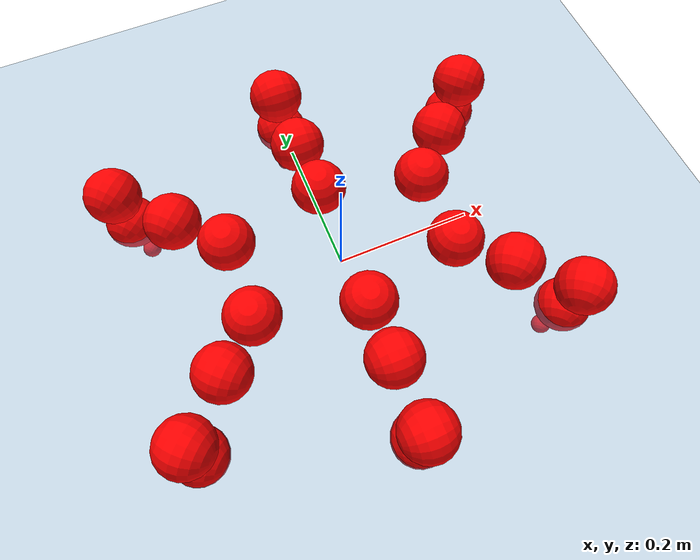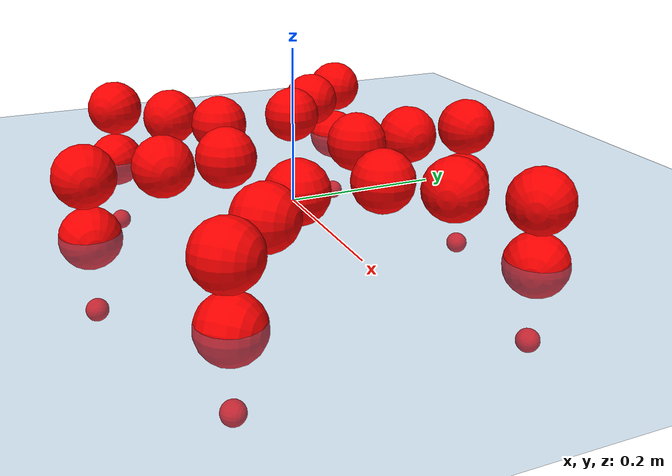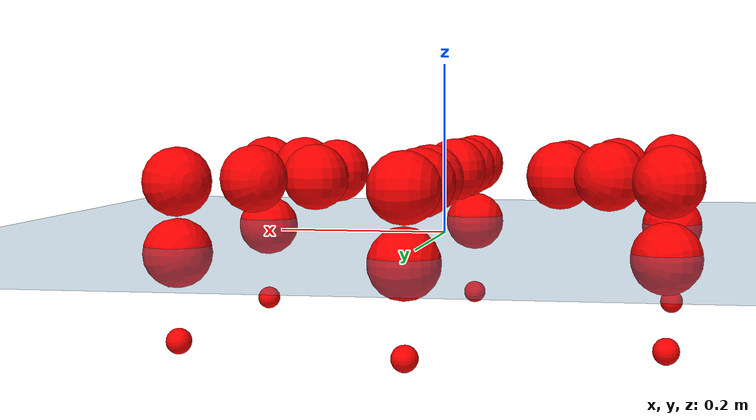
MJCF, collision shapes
<mujoco model="Golem">
  <compiler angle="radian" assetdir="assets" balanceinertia="true" inertiafromgeom="false"/>

  <option timestep="0.005" density="1.2" viscosity="2e-05"/>

  <size nkey="1"/>

  <visual>
    <quality shadowsize="8192"/>
    <map shadowclip="0.5"/>
  </visual>

  <default>
    <default class="/">
      <joint armature="0.01" damping="0.01" frictionloss="0.01"/>
      <geom contype="0" conaffinity="0" group="1" solref="-1000 -80"/>
      <site size="0.01 0.005 0.005" group="5"/>
      <general forcelimited="true" biastype="affine" gainprm="25" biasprm="0 -25 -0.5"/>
      <default class="visual">
        <geom type="mesh" group="2"/>
      </default>
      <default class="collision">
        <geom group="3"/>
      </default>
      <default class="foot">
        <geom size="0.01 0 0" condim="6" group="4" priority="1" solimp="0.015 1 0.01"/>
      </default>
      <default class="reward_collision_sphere">
        <geom group="5" rgba="1 0 0 1"/>
      </default>
    </default>
  </default>

  <asset>
    <texture type="skybox" colorspace="auto" name="//unnamed_texture_0" builtin="gradient" rgb1="0.95 0.95 0.95" rgb2="0.95 0.95 0.95" width="100" height="600"/>
    <texture type="2d" colorspace="auto" name="texplane" builtin="checker" rgb1="0.345 0.575 0.748" rgb2="0.345 0.575 0.748" markrgb="1 1 1" width="512" height="512"/>
    <material name="MatPlane" class="/" texture="texplane" texuniform="true" texrepeat="2 2" specular="0.9"/>
    <mesh name="body" class="/" file="body.stl" scale="0.001 0.001 0.001"/>
    <mesh name="coxa" class="/" file="coxa.stl" scale="0.001 0.001 0.001"/>
    <mesh name="femur" class="/" file="femur.stl" scale="0.001 0.001 0.001"/>
    <mesh name="tibia" class="/" file="tibia.stl" scale="0.001 0.001 0.001"/>
    <mesh name="tarsus" class="/" file="tarsus.stl" scale="0.001 0.001 0.001"/>
  </asset>

  <worldbody>
    <geom name="floor" class="/" size="100 100 0.125" type="plane" group="0" material="MatPlane"/>
    <light name="toplight_shadow" class="/" pos="0 0 5" dir="0.0990148 0.0990148 -0.990148" type="directional" ambient="0.04 0.04 0.04" diffuse="0.55 0.55 0.55" specular="0.12 0.12 0.12"/>
    <light name="toplight_fill" class="/" pos="0 0 5" dir="0.0990148 0.0990148 -0.990148" type="directional" castshadow="false" ambient="0.04 0.04 0.04" diffuse="0.3 0.3 0.3" specular="0.08 0.08 0.08"/>
    <body name="trunk" pos="-0.000122176 0.000810116 -0.00273745" quat="0.999999 -0.000382689 0.00077397 -0.00108935">
      <inertial pos="0.00202879 -0.00196279 -0.000816158" quat="0.999991 0.00181923 0.00343831 0.0017076" mass="3.149" diaginertia="0.00611532 0.00499955 0.0166632"/>
      <joint name="//unnamed_joint_0" type="free"/>
      <geom name="//unnamed_geom_1" class="/" pos="0 0 0.0708818" quat="1 0 0 0" type="mesh" rgba="0.9 0.9 0.9 1" mesh="body"/>
      <site name="imu" class="/" pos="0.117216 0.013637 0.11977" size="0.0096542"/>
      <camera name="track" class="/" pos="0 -1.75984 0" quat="0.707107 0.707107 0 0" mode="trackcom"/>
      <camera name="ego_camera" class="/" pos="0.118146 0 0.110753" quat="-0.5 -0.5 0.5 0.5"/>
      <body name="coxa_RR" pos="-0.16288 -0.0732407 0.0729918" quat="0.382448 0.000417657 0.000634738 -0.923977">
        <inertial pos="0.00280012 0.000812057 -0.0022128" quat="0.99996 0.00768529 0.00397104 -0.00213008" mass="0.18528" diaginertia="0.00614391 0.00542075 0.0168988"/>
        <joint name="coxa_joint_RR" class="/" pos="0 0 0" axis="0.000728679 -0.00035515 -1" stiffness="0.000399945" range="-3.10488 3.12533" armature="0.00914348" damping="0" frictionloss="0.0102787"/>
        <geom name="//unnamed_geom_2" class="/" type="mesh" rgba="0.2 0.2 0.2 1" mesh="coxa"/>
        <geom name="//unnamed_geom_3" class="reward_collision_sphere" size="0.0386168" pos="-0.0272644 0 0"/>
        <body name="femur_RR" pos="0.0513522 -0.00150736 0.00140829" quat="0.500474 -0.500285 0.500166 0.499074">
          <inertial pos="0.000224045 0.00192351 0.002365" quat="0.999909 -0.0081494 -0.00821091 0.00695583" mass="0.172249" diaginertia="0.00619391 0.00497776 0.0161703"/>
          <joint name="femur_joint_RR" class="/" pos="0 0 0" axis="-0.00208883 0.0048849 -0.999986" range="-3.12311 3.12189" armature="0.0109107" damping="0.00870543" frictionloss="0.00975812"/>
          <geom name="//unnamed_geom_4" class="/" type="mesh" rgba="0.9 0.9 0.9 1" mesh="femur"/>
          <geom name="//unnamed_geom_5" class="reward_collision_sphere" size="0.0386168"/>
          <body name="tibia_RR" pos="-0.00284169 -0.0933624 0.000588677" quat="-3.79894e-05 1 -3.26873e-05 -7.58999e-05">
            <inertial pos="-0.000656011 0.00235321 -0.000706444" quat="1 7.42706e-05 0.00067603 0.000188664" mass="0.173981" diaginertia="0.00602122 0.00507015 0.0162708"/>
            <joint name="tibia_joint_RR" class="/" pos="0 0 0" axis="0.0127696 0.00142675 0.999917" range="-3.09423 3.12977" armature="0.00834268" damping="0.00892251" frictionloss="0.010379"/>
            <geom name="//unnamed_geom_6" class="/" type="mesh" rgba="0.2 0.2 0.2 1" mesh="tibia"/>
            <geom name="//unnamed_geom_7" class="reward_collision_sphere" size="0.0386168"/>
            <body name="tarsus_RR" pos="0.0793228 0.00293625 -0.00194122" quat="0.999999 -0.000995979 0.000615119 -0.000335558">
              <inertial pos="0.0568689 0.00112308 0.00286589" quat="0.507093 0.502046 0.492173 0.49857" mass="0.174146" diaginertia="0.00594419 0.00508177 0.0164413"/>
              <joint name="tarsus_joint_RR" class="/" pos="0 0 0" axis="-0.00906383 0.0115136 0.999893" range="-3.18853 3.15851" armature="0.00925117" damping="0.0157238" frictionloss="0.00915733"/>
              <geom name="//unnamed_geom_8" class="/" type="mesh" rgba="0.9 0.9 0.9 1" mesh="tarsus"/>
              <geom name="foot_1" class="foot" size="0.00868569" pos="0.101787 0 0" quat="0 -0.707107 0 0.707107"/>
              <geom name="//unnamed_geom_10" class="reward_collision_sphere" size="0.0386168"/>
              <geom name="//unnamed_geom_11" class="reward_collision_sphere" size="0.0144813" pos="0.0976974 0 0"/>
              <site name="foot_1" class="foot" pos="0.101787 0 0" quat="0 -0.707107 0 0.707107" size="0.0096542"/>
            </body>
          </body>
        </body>
      </body>
      <body name="coxa_RM" pos="0.00150121 -0.11885 0.0735627" quat="0.707108 -0.000187997 0.000117514 -0.707105">
        <inertial pos="-0.000795119 -0.00028814 -0.00258656" quat="0.999958 0.00744777 -0.00354995 0.00390515" mass="0.178869" diaginertia="0.00627945 0.00554027 0.0176312"/>
        <joint name="coxa_joint_RM" class="/" pos="0 0 0" axis="0.00570846 0.00588877 -0.999966" range="-3.14307 3.09124" armature="0.00950892" damping="0.0112712" frictionloss="0.0109857"/>
        <geom name="//unnamed_geom_12" class="/" type="mesh" rgba="0.2 0.2 0.2 1" mesh="coxa"/>
        <geom name="//unnamed_geom_13" class="reward_collision_sphere" size="0.0386168" pos="-0.0272644 0 0"/>
        <body name="femur_RM" pos="0.0526535 -0.000799608 -0.00141059" quat="0.499931 -0.500337 0.499547 0.500185">
          <inertial pos="0.000220196 0.00272136 0.000604786" quat="0.999991 -0.00302917 -0.00277272 0.00060641" mass="0.185872" diaginertia="0.00600966 0.00529352 0.0162608"/>
          <joint name="femur_joint_RM" class="/" pos="0 0 0" axis="-0.000596656 -0.000196882 -1" range="-3.08467 3.18282" armature="0.0110612" damping="0.0187232" frictionloss="0.010879"/>
          <geom name="//unnamed_geom_14" class="/" type="mesh" rgba="0.9 0.9 0.9 1" mesh="femur"/>
          <geom name="//unnamed_geom_15" class="reward_collision_sphere" size="0.0386168"/>
          <body name="tibia_RM" pos="-0.0001375 -0.0947348 7.49637e-05" quat="0.000258657 1 -0.000437821 0.000448904">
            <inertial pos="-0.000895328 5.6122e-05 0.00285759" quat="0.999997 -0.00211032 0.000111862 -0.00151543" mass="0.185235" diaginertia="0.00621421 0.00524353 0.0162032"/>
            <joint name="tibia_joint_RM" class="/" pos="0 0 0" axis="-0.00803357 0.00612171 0.999949" range="-3.10747 3.19543" armature="0.00860064" damping="0.0193421" frictionloss="0.0107761"/>
            <geom name="//unnamed_geom_16" class="/" type="mesh" rgba="0.2 0.2 0.2 1" mesh="tibia"/>
            <geom name="//unnamed_geom_17" class="reward_collision_sphere" size="0.0386168"/>
            <body name="tarsus_RM" pos="0.0785297 -0.00133056 0.000173355" quat="0.999999 -0.000748152 0.000733804 -0.00096888">
              <inertial pos="0.0550034 -0.000993282 0.000644045" quat="0.499136 0.499915 0.500084 0.500864" mass="0.191813" diaginertia="0.00644063 0.00542218 0.0171624"/>
              <joint name="tarsus_joint_RM" class="/" pos="0 0 0" axis="-0.00589108 0.00385211 0.999975" range="-3.11412 3.14701" armature="0.00870803" damping="0.0165176" frictionloss="0.00957791"/>
              <geom name="//unnamed_geom_18" class="/" type="mesh" rgba="0.9 0.9 0.9 1" mesh="tarsus"/>
              <geom name="foot_2" class="foot" size="0.00867344" pos="0.101787 0 0" quat="0 -0.707107 0 0.707107"/>
              <geom name="//unnamed_geom_20" class="reward_collision_sphere" size="0.0386168"/>
              <geom name="//unnamed_geom_21" class="reward_collision_sphere" size="0.0144813" pos="0.0976974 0 0"/>
              <site name="foot_2" class="foot" pos="0.101787 0 0" quat="0 -0.707107 0 0.707107" size="0.0096542"/>
            </body>
          </body>
        </body>
      </body>
      <body name="coxa_RF" pos="0.163083 -0.0746445 0.0728752" quat="0.924071 0.000163706 -0.000477842 -0.382221">
        <inertial pos="-0.00216069 -0.00106446 -0.00264799" quat="0.99991 0.0045679 -0.00564314 0.0112808" mass="0.178558" diaginertia="0.00627026 0.00529477 0.0171425"/>
        <joint name="coxa_joint_RF" class="/" pos="0 0 0" axis="0.00263584 -0.000437334 -0.999996" range="-3.15924 3.08399" armature="0.00999542" damping="0.0171891" frictionloss="0.0108559"/>
        <geom name="//unnamed_geom_22" class="/" type="mesh" rgba="0.2 0.2 0.2 1" mesh="coxa"/>
        <geom name="//unnamed_geom_23" class="reward_collision_sphere" size="0.0386168" pos="-0.0272644 0 0"/>
        <body name="femur_RF" pos="0.0556114 -0.00189053 0.00110789" quat="0.50118 -0.500196 0.499247 0.499375">
          <inertial pos="-0.000798549 0.000123503 -1.52311e-05" quat="0.999927 -0.00920347 0.00435373 -0.00644777" mass="0.180071" diaginertia="0.00601173 0.00516497 0.0161061"/>
          <joint name="femur_joint_RF" class="/" pos="0 0 0" axis="-0.00237829 -0.00604414 -0.999979" range="-3.10063 3.13993" armature="0.00926047" damping="0.00952504" frictionloss="0.00914653"/>
          <geom name="//unnamed_geom_24" class="/" type="mesh" rgba="0.9 0.9 0.9 1" mesh="femur"/>
          <geom name="//unnamed_geom_25" class="reward_collision_sphere" size="0.0386168"/>
          <body name="tibia_RF" pos="0.00210232 -0.0929067 0.00176829" quat="0.000571338 1 0.000129518 -0.000386775">
            <inertial pos="0.000572529 -0.00230181 -0.00278261" quat="0.99992 0.00762752 -0.00862765 0.00532108" mass="0.180423" diaginertia="0.0059877 0.00519662 0.0167406"/>
            <joint name="tibia_joint_RF" class="/" pos="0 0 0" axis="-0.0108155 -0.00267358 0.999938" stiffness="0.0128245" range="-3.18306 3.12945" armature="0.0094134" damping="0.0216411" frictionloss="0.00839791"/>
            <geom name="//unnamed_geom_26" class="/" type="mesh" rgba="0.2 0.2 0.2 1" mesh="tibia"/>
            <geom name="//unnamed_geom_27" class="reward_collision_sphere" size="0.0386168"/>
            <body name="tarsus_RF" pos="0.0799647 -0.00220566 -0.00117539" quat="1 -2.68268e-05 -3.8656e-05 1.67296e-05">
              <inertial pos="0.0549182 -0.000587718 0.00108425" quat="0.498683 0.497259 0.499053 0.50497" mass="0.173793" diaginertia="0.00589095 0.00496463 0.0160535"/>
              <joint name="tarsus_joint_RF" class="/" pos="0 0 0" axis="0.00255628 0.0102579 0.999944" stiffness="0.00371397" range="-3.12162 3.14589" armature="0.00937128" damping="0" frictionloss="0.0108584"/>
              <geom name="//unnamed_geom_28" class="/" type="mesh" rgba="0.9 0.9 0.9 1" mesh="tarsus"/>
              <geom name="foot_3" class="foot" size="0.0101672" pos="0.101787 0 0" quat="0 -0.707107 0 0.707107"/>
              <geom name="//unnamed_geom_30" class="reward_collision_sphere" size="0.0386168"/>
              <geom name="//unnamed_geom_31" class="reward_collision_sphere" size="0.0144813" pos="0.0976974 0 0"/>
              <site name="foot_3" class="foot" pos="0.101787 0 0" quat="0 -0.707107 0 0.707107" size="0.0096542"/>
            </body>
          </body>
        </body>
      </body>
      <body name="coxa_LR" pos="-0.161258 0.0747546 0.0750296" quat="0.382817 0.000372726 -0.00136105 0.923823">
        <inertial pos="-0.00207086 0.00255298 -0.00238854" quat="0.999997 0.000212575 0.00149441 0.00177383" mass="0.180222" diaginertia="0.00609485 0.00505268 0.0164958"/>
        <joint name="coxa_joint_LR" class="/" pos="0 0 0" axis="-0.0108333 0.0129992 -0.999857" stiffness="0.0109728" range="-3.17806 3.18843" armature="0.0094172" damping="0.0162706" frictionloss="0.0110179"/>
        <geom name="//unnamed_geom_32" class="/" type="mesh" rgba="0.2 0.2 0.2 1" mesh="coxa"/>
        <geom name="//unnamed_geom_33" class="reward_collision_sphere" size="0.0386168" pos="-0.0272644 0 0"/>
        <body name="femur_LR" pos="0.0530586 0.00174077 0.0025009" quat="0.499804 -0.499589 0.500207 0.500399">
          <inertial pos="-0.00126351 0.00275424 0.000890233" quat="0.999941 -0.00739163 0.00541698 -0.00586235" mass="0.175611" diaginertia="0.00642352 0.00523209 0.0161037"/>
          <joint name="femur_joint_LR" class="/" pos="0 0 0" axis="0.00451086 -0.00566331 0.999974" range="-3.18224 3.16794" armature="0.0103666" damping="0.00628446" frictionloss="0.00972711"/>
          <geom name="//unnamed_geom_34" class="/" type="mesh" rgba="0.9 0.9 0.9 1" mesh="femur"/>
          <geom name="//unnamed_geom_35" class="reward_collision_sphere" size="0.0386168"/>
          <body name="tibia_LR" pos="0.00149819 -0.0956856 -0.00338077" quat="-0.000483352 1 -0.00025219 0.00019699">
            <inertial pos="-0.00232339 0.00111151 0.00292939" quat="0.999902 0.00802809 0.00909743 -0.00705323" mass="0.185199" diaginertia="0.00614578 0.00539263 0.0162823"/>
            <joint name="tibia_joint_LR" class="/" pos="0 0 0" axis="0.00275516 -0.00501012 -0.999984" range="-3.097 3.19551" armature="0.00820032" damping="0" frictionloss="0.00961045"/>
            <geom name="//unnamed_geom_36" class="/" type="mesh" rgba="0.2 0.2 0.2 1" mesh="tibia"/>
            <geom name="//unnamed_geom_37" class="reward_collision_sphere" size="0.0386168"/>
            <body name="tarsus_LR" pos="0.0801625 -0.00106659 0.00124747" quat="1 -2.09165e-05 5.8453e-05 -9.39997e-06">
              <inertial pos="0.0541872 -0.00246212 -0.000600289" quat="0.500016 0.500346 0.500131 0.499506" mass="0.172414" diaginertia="0.00612873 0.00531077 0.0169502"/>
              <joint name="tarsus_joint_LR" class="/" pos="0 0 0" axis="-0.0015199 0.000725365 -0.999999" stiffness="0.00401833" range="-3.13439 3.1925" armature="0.0096006" damping="0.00458352" frictionloss="0.00840193"/>
              <geom name="//unnamed_geom_38" class="/" type="mesh" rgba="0.9 0.9 0.9 1" mesh="tarsus"/>
              <geom name="foot_4" class="foot" size="0.0106443" pos="0.101787 0 0" quat="0.707107 0 -0.707107 0"/>
              <geom name="//unnamed_geom_40" class="reward_collision_sphere" size="0.0386168"/>
              <geom name="//unnamed_geom_41" class="reward_collision_sphere" size="0.0144813" pos="0.0976974 0 0"/>
              <site name="foot_4" class="foot" pos="0.101787 0 0" quat="0.707107 0 -0.707107 0" size="0.0096542"/>
            </body>
          </body>
        </body>
      </body>
      <body name="coxa_LM" pos="0.00285192 0.115281 0.0725745" quat="0.707086 1.0504e-05 -6.50092e-05 0.707128">
        <inertial pos="0.000470625 -0.000170617 -0.0020596" quat="0.999995 -0.0010862 0.00298116 0.000508339" mass="0.17729" diaginertia="0.00638484 0.00526522 0.0167267"/>
        <joint name="coxa_joint_LM" class="/" pos="0 0 0" axis="0.0125067 0.00328905 -0.999916" range="-3.12647 3.14713" armature="0.0101589" damping="0.00450463" frictionloss="0.00956526"/>
        <geom name="//unnamed_geom_42" class="/" type="mesh" rgba="0.2 0.2 0.2 1" mesh="coxa"/>
        <geom name="//unnamed_geom_43" class="reward_collision_sphere" size="0.0386168" pos="-0.0272644 0 0"/>
        <body name="femur_LM" pos="0.0507311 0.00244128 -0.000206559" quat="0.500542 -0.499426 0.499981 0.50005">
          <inertial pos="-0.00275227 6.31616e-05 -0.00173759" quat="0.9999 0.0105216 -0.00851872 0.00410898" mass="0.173862" diaginertia="0.00605243 0.00507684 0.0161992"/>
          <joint name="femur_joint_LM" class="/" pos="0 0 0" axis="0.000278843 -0.00984242 0.999952" stiffness="0.00447471" range="-3.13868 3.10183" armature="0.00849389" damping="0" frictionloss="0.00833911"/>
          <geom name="//unnamed_geom_44" class="/" type="mesh" rgba="0.9 0.9 0.9 1" mesh="femur"/>
          <geom name="//unnamed_geom_45" class="reward_collision_sphere" size="0.0386168"/>
          <body name="tibia_LM" pos="-0.000547571 -0.0925532 -0.000359173" quat="-0.000118424 0.999999 -0.00114821 -5.3815e-05">
            <inertial pos="0.00203355 0.000539207 -0.000152767" quat="0.999993 -0.00372871 -0.000503631 -0.000774287" mass="0.182069" diaginertia="0.00610095 0.00514885 0.0162892"/>
            <joint name="tibia_joint_LM" class="/" pos="0 0 0" axis="0.0128715 0.00671188 -0.999895" range="-3.0849 3.09247" armature="0.010212" damping="0.00275955" frictionloss="0.0109968"/>
            <geom name="//unnamed_geom_46" class="/" type="mesh" rgba="0.2 0.2 0.2 1" mesh="tibia"/>
            <geom name="//unnamed_geom_47" class="reward_collision_sphere" size="0.0386168"/>
            <body name="tarsus_LM" pos="0.0780248 -0.00157807 0.000233128" quat="1 -0.00018061 0.000176335 2.85558e-05">
              <inertial pos="0.0524182 -0.00227298 0.00056231" quat="0.504873 0.502058 0.490212 0.502726" mass="0.176159" diaginertia="0.00606401 0.00508712 0.0161033"/>
              <joint name="tarsus_joint_LM" class="/" pos="0 0 0" axis="-0.0131911 0.000446372 -0.999913" stiffness="0.0111158" range="-3.14219 3.14523" armature="0.00979867" damping="0.0183303" frictionloss="0.010576"/>
              <geom name="//unnamed_geom_48" class="/" type="mesh" rgba="0.9 0.9 0.9 1" mesh="tarsus"/>
              <geom name="foot_5" class="foot" size="0.0106943" pos="0.101787 0 0" quat="0.707107 0 -0.707107 0"/>
              <geom name="//unnamed_geom_50" class="reward_collision_sphere" size="0.0386168"/>
              <geom name="//unnamed_geom_51" class="reward_collision_sphere" size="0.0144813" pos="0.0976974 0 0"/>
              <site name="foot_5" class="foot" pos="0.101787 0 0" quat="0.707107 0 -0.707107 0" size="0.0096542"/>
            </body>
          </body>
        </body>
      </body>
      <body name="coxa_LF" pos="0.163994 0.071529 0.0709725" quat="0.923845 0.000313652 0.0002687 0.382766">
        <inertial pos="-0.00216213 -0.00151574 -0.00272545" quat="0.999996 0.0014872 0.000472735 -0.00243885" mass="0.173188" diaginertia="0.00599228 0.00498255 0.016648"/>
        <joint name="coxa_joint_LF" class="/" pos="0 0 0" axis="0.00840596 0.00163033 -0.999963" range="-3.18964 3.1418" armature="0.0102872" damping="0.012886" frictionloss="0.00828908"/>
        <geom name="//unnamed_geom_52" class="/" type="mesh" rgba="0.2 0.2 0.2 1" mesh="coxa"/>
        <geom name="//unnamed_geom_53" class="reward_collision_sphere" size="0.0386168" pos="-0.0272644 0 0"/>
        <body name="femur_LF" pos="0.0559112 0.00228338 0.00113314" quat="0.501027 -0.499589 0.499296 0.500086">
          <inertial pos="-0.000236023 -0.00275156 0.000529279" quat="1 -2.84734e-05 2.28852e-05 5.24639e-05" mass="0.175701" diaginertia="0.00583966 0.00511614 0.0161042"/>
          <joint name="femur_joint_LF" class="/" pos="0 0 0" axis="0.0120678 -0.00661094 0.999905" range="-3.18186 3.19543" armature="0.00941591" damping="0.00277415" frictionloss="0.00957627"/>
          <geom name="//unnamed_geom_54" class="/" type="mesh" rgba="0.9 0.9 0.9 1" mesh="femur"/>
          <geom name="//unnamed_geom_55" class="reward_collision_sphere" size="0.0386168"/>
          <body name="tibia_LF" pos="-0.000248268 -0.09522 0.000615442" quat="-0.000517056 0.999999 -0.000695985 0.000836526">
            <inertial pos="0.00253653 0.00261816 -0.0022914" quat="0.99999 -0.00231904 -0.00252069 0.00289629" mass="0.185944" diaginertia="0.00598101 0.00529141 0.016117"/>
            <joint name="tibia_joint_LF" class="/" pos="0 0 0" axis="-0.00468283 0.0115758 -0.999922" stiffness="0.00273567" range="-3.15788 3.08302" armature="0.008992" damping="0.00976879" frictionloss="0.00983212"/>
            <geom name="//unnamed_geom_56" class="/" type="mesh" rgba="0.2 0.2 0.2 1" mesh="tibia"/>
            <geom name="//unnamed_geom_57" class="reward_collision_sphere" size="0.0386168"/>
            <body name="tarsus_LF" pos="0.0783235 0.00161475 -0.00300983" quat="1 0.000147412 1.59384e-05 4.58663e-05">
              <inertial pos="0.0537945 0.000613645 -0.000237043" quat="0.499814 0.504033 0.494434 0.501669" mass="0.176496" diaginertia="0.00613859 0.00529199 0.0169083"/>
              <joint name="tarsus_joint_LF" class="/" pos="0 0 0" axis="0.00394174 -0.00229848 -0.99999" stiffness="0.0277385" range="-3.09758 3.08287" armature="0.00939347" damping="0.0340597" frictionloss="0.00868297"/>
              <geom name="//unnamed_geom_58" class="/" type="mesh" rgba="0.9 0.9 0.9 1" mesh="tarsus"/>
              <geom name="foot_6" class="foot" size="0.00990246" pos="0.101787 0 0" quat="0.707107 0 -0.707107 0"/>
              <geom name="//unnamed_geom_60" class="reward_collision_sphere" size="0.0386168"/>
              <geom name="//unnamed_geom_61" class="reward_collision_sphere" size="0.0144813" pos="0.0976974 0 0"/>
              <site name="foot_6" class="foot" pos="0.101787 0 0" quat="0.707107 0 -0.707107 0" size="0.0096542"/>
            </body>
          </body>
        </body>
      </body>
    </body>
  </worldbody>

  <contact>
    <pair class="/" geom1="floor" geom2="foot_1" name="//unnamed_contact_0"/>
    <pair class="/" geom1="floor" geom2="foot_2" name="//unnamed_contact_1"/>
    <pair class="/" geom1="floor" geom2="foot_3" name="//unnamed_contact_2"/>
    <pair class="/" geom1="floor" geom2="foot_4" name="//unnamed_contact_3"/>
    <pair class="/" geom1="floor" geom2="foot_5" name="//unnamed_contact_4"/>
    <pair class="/" geom1="floor" geom2="foot_6" name="//unnamed_contact_5"/>
  </contact>

  <actuator>
    <general name="coxa_joint_RR" class="/" joint="coxa_joint_RR" forcerange="-7.12411 7.12411" gainprm="23.0279" biasprm="0 -23.0279 -0.517962"/>
    <general name="femur_joint_RR" class="/" joint="femur_joint_RR" forcerange="-7.13108 7.13108" gainprm="23.0279" biasprm="0 -23.0279 -0.517962"/>
    <general name="tibia_joint_RR" class="/" joint="tibia_joint_RR" forcerange="-6.95016 6.95016" gainprm="23.0279" biasprm="0 -23.0279 -0.517962"/>
    <general name="tarsus_joint_RR" class="/" joint="tarsus_joint_RR" forcerange="-7.78419 7.78419" gainprm="23.0279" biasprm="0 -23.0279 -0.517962"/>
    <general name="coxa_joint_RM" class="/" joint="coxa_joint_RM" forcerange="-6.65797 6.65797" gainprm="23.0279" biasprm="0 -23.0279 -0.517962"/>
    <general name="femur_joint_RM" class="/" joint="femur_joint_RM" forcerange="-7.77879 7.77879" gainprm="23.0279" biasprm="0 -23.0279 -0.517962"/>
    <general name="tibia_joint_RM" class="/" joint="tibia_joint_RM" forcerange="-7.19649 7.19649" gainprm="23.0279" biasprm="0 -23.0279 -0.517962"/>
    <general name="tarsus_joint_RM" class="/" joint="tarsus_joint_RM" forcerange="-7.50704 7.50704" gainprm="23.0279" biasprm="0 -23.0279 -0.517962"/>
    <general name="coxa_joint_RF" class="/" joint="coxa_joint_RF" forcerange="-6.31101 6.31101" gainprm="23.0279" biasprm="0 -23.0279 -0.517962"/>
    <general name="femur_joint_RF" class="/" joint="femur_joint_RF" forcerange="-6.7874 6.7874" gainprm="23.0279" biasprm="0 -23.0279 -0.517962"/>
    <general name="tibia_joint_RF" class="/" joint="tibia_joint_RF" forcerange="-7.34823 7.34823" gainprm="23.0279" biasprm="0 -23.0279 -0.517962"/>
    <general name="tarsus_joint_RF" class="/" joint="tarsus_joint_RF" forcerange="-6.82652 6.82652" gainprm="23.0279" biasprm="0 -23.0279 -0.517962"/>
    <general name="coxa_joint_LR" class="/" joint="coxa_joint_LR" forcerange="-7.19011 7.19011" gainprm="23.0279" biasprm="0 -23.0279 -0.517962"/>
    <general name="femur_joint_LR" class="/" joint="femur_joint_LR" forcerange="-7.04474 7.04474" gainprm="23.0279" biasprm="0 -23.0279 -0.517962"/>
    <general name="tibia_joint_LR" class="/" joint="tibia_joint_LR" forcerange="-7.32466 7.32466" gainprm="23.0279" biasprm="0 -23.0279 -0.517962"/>
    <general name="tarsus_joint_LR" class="/" joint="tarsus_joint_LR" forcerange="-6.9127 6.9127" gainprm="23.0279" biasprm="0 -23.0279 -0.517962"/>
    <general name="coxa_joint_LM" class="/" joint="coxa_joint_LM" forcerange="-7.13514 7.13514" gainprm="23.0279" biasprm="0 -23.0279 -0.517962"/>
    <general name="femur_joint_LM" class="/" joint="femur_joint_LM" forcerange="-7.20501 7.20501" gainprm="23.0279" biasprm="0 -23.0279 -0.517962"/>
    <general name="tibia_joint_LM" class="/" joint="tibia_joint_LM" forcerange="-7.0885 7.0885" gainprm="23.0279" biasprm="0 -23.0279 -0.517962"/>
    <general name="tarsus_joint_LM" class="/" joint="tarsus_joint_LM" forcerange="-7.46731 7.46731" gainprm="23.0279" biasprm="0 -23.0279 -0.517962"/>
    <general name="coxa_joint_LF" class="/" joint="coxa_joint_LF" forcerange="-6.42998 6.42998" gainprm="23.0279" biasprm="0 -23.0279 -0.517962"/>
    <general name="femur_joint_LF" class="/" joint="femur_joint_LF" forcerange="-6.96117 6.96117" gainprm="23.0279" biasprm="0 -23.0279 -0.517962"/>
    <general name="tibia_joint_LF" class="/" joint="tibia_joint_LF" forcerange="-7.17172 7.17172" gainprm="23.0279" biasprm="0 -23.0279 -0.517962"/>
    <general name="tarsus_joint_LF" class="/" joint="tarsus_joint_LF" forcerange="-7.04176 7.04176" gainprm="23.0279" biasprm="0 -23.0279 -0.517962"/>
  </actuator>

  <sensor>
    <gyro site="imu" name="imu_angular_velocity"/>
    <velocimeter site="imu" name="imu_linear_velocity"/>
    <framelinvel objtype="site" objname="foot_1" name="foot_1_global_linear_velocity"/>
    <framelinvel objtype="site" objname="foot_2" name="foot_2_global_linear_velocity"/>
    <framelinvel objtype="site" objname="foot_3" name="foot_3_global_linear_velocity"/>
    <framelinvel objtype="site" objname="foot_4" name="foot_4_global_linear_velocity"/>
    <framelinvel objtype="site" objname="foot_5" name="foot_5_global_linear_velocity"/>
    <framelinvel objtype="site" objname="foot_6" name="foot_6_global_linear_velocity"/>
  </sensor>

  <keyframe>
    <key name="home" qpos="0 0 0.1457 1 0 0 0 0 0 0 0 0 0 0 0 0 0 0 0 0 0 0 0 0 0 0 0 0 0 0 0"/>
  </keyframe>
</mujoco>
